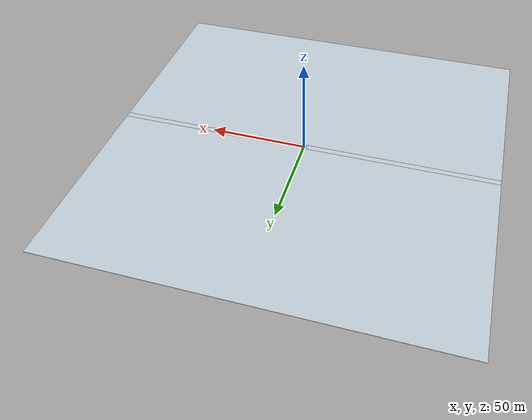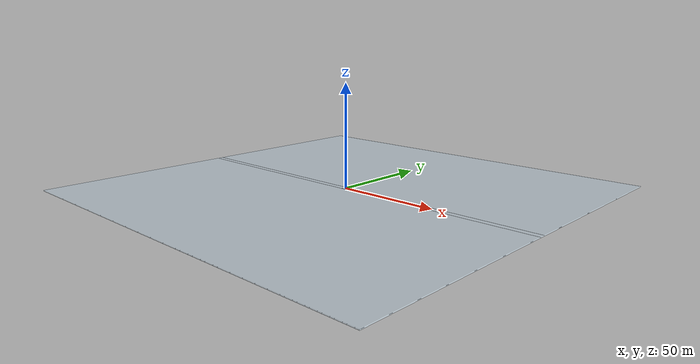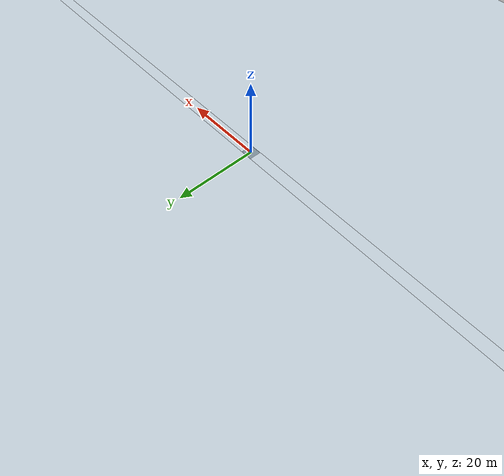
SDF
<sdf version="1.6">
 <world name="ice">
  <scene><ambient>0.3 0.4 0.5 1</ambient><background>0.1 0.3 0.45 1</background><shadows>true</shadows></scene>
  <plugin filename="gz-sim-physics-system" name="gz::sim::systems::Physics"/>
  <plugin filename="gz-sim-user-commands-system" name="gz::sim::systems::UserCommands"/>
  <plugin filename="gz-sim-scene-broadcaster-system" name="gz::sim::systems::SceneBroadcaster"/>
  <plugin filename="gz-sim-sensors-system" name="gz::sim::systems::Sensors"/>
  <plugin filename="libgz-sim-imu-system.so" name="gz::sim::systems::Imu"/>
  <plugin filename="gz-sim-buoyancy-system" name="gz::sim::systems::Buoyancy">
   <graded_buoyancy>
    <default_density>1000</default_density>
    <density_change><above_depth>0</above_depth><density>1</density></density_change>
   </graded_buoyancy>
   <enable>orca4</enable>
  </plugin>
  <include><uri>https://fuel.gazebosim.org/1.0/OpenRobotics/models/Sun</uri></include>
  <model name="water_surface">
   <static>true</static>
   <link name="link">
    <visual name="surface">
     <cast_shadows>false</cast_shadows>
     <geometry><box><size>200 200 0.01</size></box></geometry>
     <material>
      <ambient>0 0.35 0.55 1</ambient>
      <diffuse>0 0.35 0.55 1</diffuse>
      <specular>0.4 0.4 0.4 1</specular>
     </material>
     <transparency>0.8</transparency>
    </visual>
   </link>
  </model>
  <model name="ice_layer">
   <static>true</static>
   <link name="link">
    <collision name="north_collision">
     <pose>0 50.75 -0.1 0 0 0</pose>
     <geometry><box><size>200 98.5 0.4</size></box></geometry>
    </collision>
    <visual name="north_visual">
     <pose>0 50.75 -0.1 0 0 0</pose>
     <geometry><box><size>200 98.5 0.4</size></box></geometry>
     <material>
      <ambient>0.85 0.92 0.97 1</ambient>
      <diffuse>0.85 0.92 0.97 1</diffuse>
      <specular>0.6 0.6 0.6 1</specular>
     </material>
     <transparency>0.3</transparency>
    </visual>
    <collision name="south_collision">
     <pose>0 -50.75 -0.1 0 0 0</pose>
     <geometry><box><size>200 98.5 0.4</size></box></geometry>
    </collision>
    <visual name="south_visual">
     <pose>0 -50.75 -0.1 0 0 0</pose>
     <geometry><box><size>200 98.5 0.4</size></box></geometry>
     <material>
      <ambient>0.85 0.92 0.97 1</ambient>
      <diffuse>0.85 0.92 0.97 1</diffuse>
      <specular>0.6 0.6 0.6 1</specular>
     </material>
     <transparency>0.3</transparency>
    </visual>
    <collision name="east_collision">
     <pose>50.75 0 -0.1 0 0 0</pose>
     <geometry><box><size>98.5 3 0.4</size></box></geometry>
    </collision>
    <visual name="east_visual">
     <pose>50.75 0 -0.1 0 0 0</pose>
     <geometry><box><size>98.5 3 0.4</size></box></geometry>
     <material>
      <ambient>0.85 0.92 0.97 1</ambient>
      <diffuse>0.85 0.92 0.97 1</diffuse>
      <specular>0.6 0.6 0.6 1</specular>
     </material>
     <transparency>0.3</transparency>
    </visual>
    <collision name="west_collision">
     <pose>-50.75 0 -0.1 0 0 0</pose>
     <geometry><box><size>98.5 3 0.4</size></box></geometry>
    </collision>
    <visual name="west_visual">
     <pose>-50.75 0 -0.1 0 0 0</pose>
     <geometry><box><size>98.5 3 0.4</size></box></geometry>
     <material>
      <ambient>0.85 0.92 0.97 1</ambient>
      <diffuse>0.85 0.92 0.97 1</diffuse>
      <specular>0.6 0.6 0.6 1</specular>
     </material>
     <transparency>0.3</transparency>
    </visual>
   </link>
  </model>
 </world>
</sdf>
